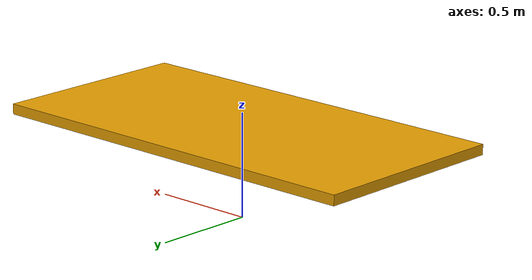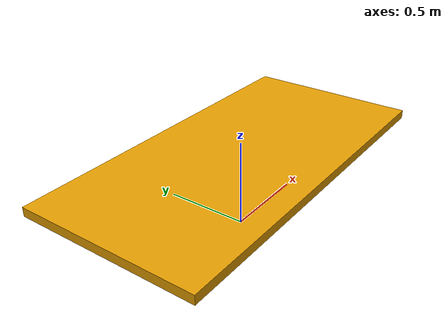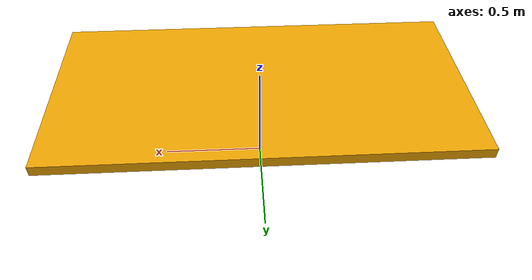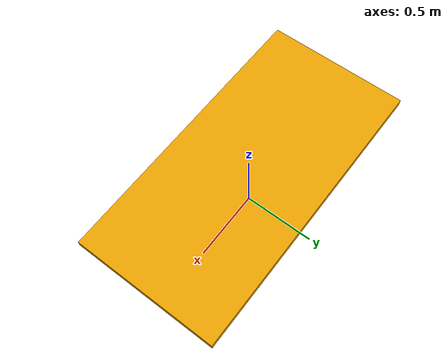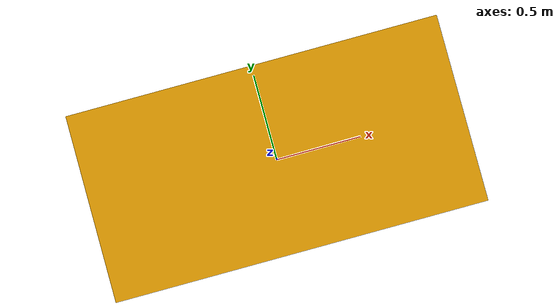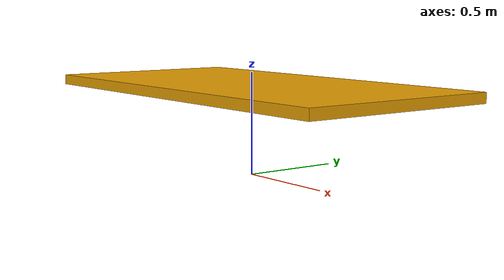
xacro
<?xml version="1.0"?>
<robot name="table"
       xmlns:xi="http://www.w3.org/2001/XInclude"
       xmlns:gazebo="http://playerstage.sourceforge.net/gazebo/xmlschema/#gz"
       xmlns:model="http://playerstage.sourceforge.net/gazebo/xmlschema/#model"
       xmlns:sensor="http://playerstage.sourceforge.net/gazebo/xmlschema/#sensor"
       xmlns:body="http://playerstage.sourceforge.net/gazebo/xmlschema/#body"
       xmlns:geom="http://playerstage.sourceforge.net/gazebo/xmlschema/#geom"
       xmlns:joint="http://playerstage.sourceforge.net/gazebo/xmlschema/#joint"
       xmlns:interface="http://playerstage.sourceforge.net/gazebo/xmlschema/#interface"
       xmlns:rendering="http://playerstage.sourceforge.net/gazebo/xmlschema/#rendering"
       xmlns:renderable="http://playerstage.sourceforge.net/gazebo/xmlschema/#renderable"
       xmlns:controller="http://playerstage.sourceforge.net/gazebo/xmlschema/#controller"
       xmlns:physics="http://playerstage.sourceforge.net/gazebo/xmlschema/#physics">

  <property name="table_height" value="0.45" />
  <property name="table_width" value="2.0" />
  <property name="table_depth" value="1.0" />
  <property name="leg_radius" value="0.02" />
  <property name="table_x" value="0.0" />
  <property name="table_y" value="0.0" />
  <property name="table_z" value="0.0" />
  <property name="leg_shift" value="0.3" />

  <property name="table_top_thickness" value="0.05"/>

  <property name="M_PI" value="3.1415926535897931" />

  <!-- tabletop height is .55+.01+.025=.585 -->
  <link name="table_top_link">
    <inertial>
      <mass value="1.0" />
      <origin xyz="${table_x} ${table_y} ${table_z+table_height-table_top_thickness/2}" />
      <inertia ixx="1" ixy="0"  ixz="0"
               iyy="1" iyz="0"
               izz="1" />
    </inertial>
    <visual>
      <origin xyz="${table_x} ${table_y} ${table_z+table_height-table_top_thickness/2+0.001}" />
      <geometry>
        <box size="${table_width} ${table_depth} ${table_top_thickness}" />
      </geometry>
    </visual>
    <collision>
      <origin xyz="${table_x} ${table_y} ${table_z+table_height-table_top_thickness/2}" />
      <geometry>
        <box size="${table_width} ${table_depth} ${table_top_thickness}" />
      </geometry>
    </collision>
  </link>
  <gazebo reference="table_top_link">
    <mu1>50.0</mu1>
    <mu2>50.0</mu2>
    <kp>1000000.0</kp>
    <kd>1.0</kd>
  </gazebo>
  <gazebo>
    <static>true</static>
    <canonicalBody>table_top_link</canonicalBody>
  </gazebo>

</robot>
